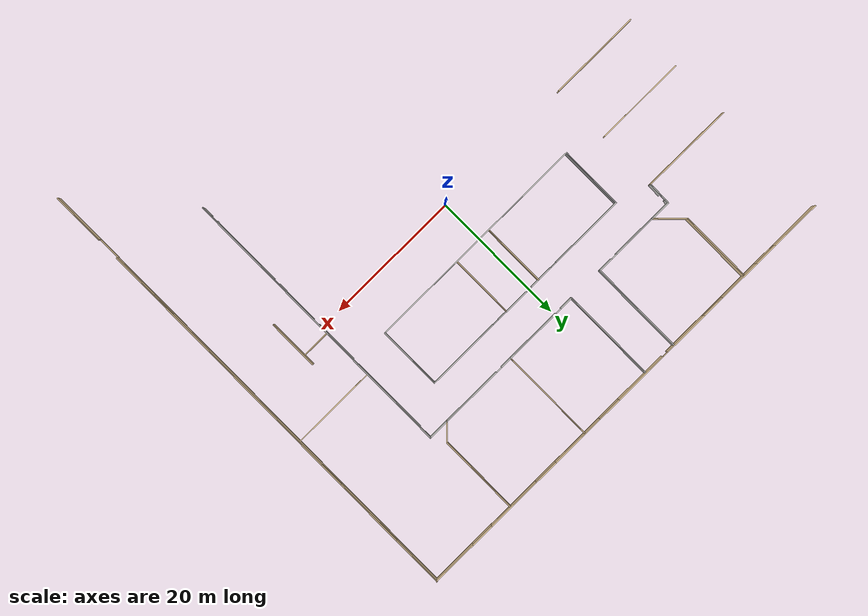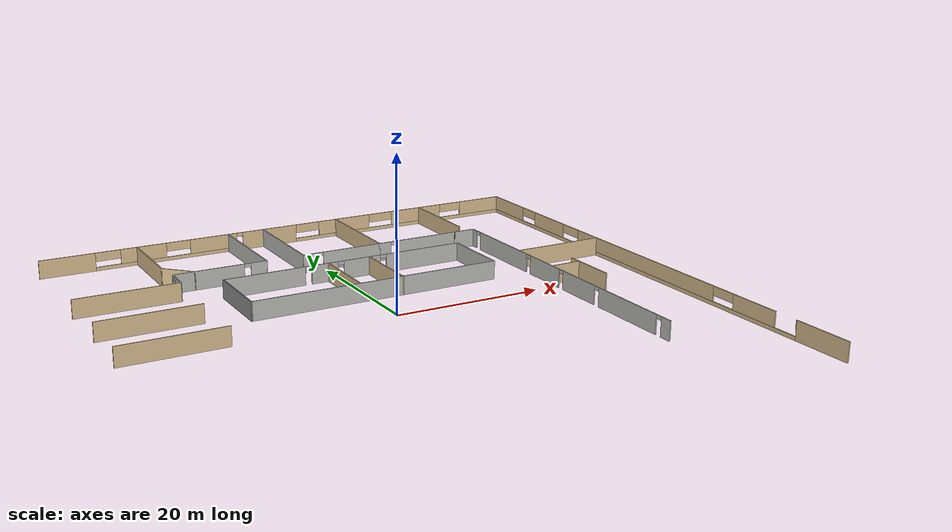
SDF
<sdf version="1.6">
 <model name="Building">
  <pose>0.649204 -3.2026 0 0 -0 0</pose>
  <link name="Wall_103">
   <collision name="Wall_103_Collision">
    <geometry><box><size>4.25 0.15 2.5</size></box></geometry>
    <pose>0 0 1.25 0 -0 0</pose>
   </collision>
   <visual name="Wall_103_Visual">
    <pose>0 0 1.25 0 -0 0</pose>
    <geometry><box><size>4.25 0.15 2.5</size></box></geometry>
    <material>
     <script><uri>file://media/materials/scripts/gazebo.material</uri><name>Gazebo/Grey</name></script>
     <ambient>0.921569 0.807843 0.615686 1</ambient>
    </material>
    <meta><layer>0</layer></meta>
   </visual>
   <pose>24.6252 4.22124 0 0 -0 0</pose>
  </link>
  <link name="Wall_107">
   <collision name="Wall_107_Collision">
    <geometry><box><size>7.5 0.15 2.5</size></box></geometry>
    <pose>0 0 1.25 0 -0 0</pose>
   </collision>
   <visual name="Wall_107_Visual">
    <pose>0 0 1.25 0 -0 0</pose>
    <geometry><box><size>7.5 0.15 2.5</size></box></geometry>
    <material>
     <script><uri>file://media/materials/scripts/gazebo.material</uri><name>Gazebo/Grey</name></script>
     <ambient>0.921569 0.807843 0.615686 1</ambient>
    </material>
    <meta><layer>0</layer></meta>
   </visual>
   <pose>26.8012 2.14732 0 0 0 -1.5708</pose>
  </link>
  <link name="Wall_15">
   <pose>35.2955 2.175 0 0 -0 1.5708</pose>
   <visual name="Wall_15_Visual_0">
    <pose>-31.881 0 1.25 0 -0 0</pose>
    <geometry><box><size>7.73799 0.15 2.5</size></box></geometry>
    <material>
     <script><uri>file://media/materials/scripts/gazebo.material</uri><name>Gazebo/Grey</name></script>
     <ambient>0.921569 0.807843 0.615686 1</ambient>
    </material>
    <meta><layer>0</layer></meta>
   </visual>
   <collision name="Wall_15_Collision_0">
    <geometry><box><size>7.73799 0.15 2.5</size></box></geometry>
    <pose>-31.881 0 1.25 0 -0 0</pose>
   </collision>
   <visual name="Wall_15_Visual_1">
    <pose>3.869 0 0.25 0 -0 0</pose>
    <geometry><box><size>63.762 0.15 0.5</size></box></geometry>
    <material>
     <script><uri>file://media/materials/scripts/gazebo.material</uri><name>Gazebo/Grey</name></script>
     <ambient>0.921569 0.807843 0.615686 1</ambient>
    </material>
    <meta><layer>0</layer></meta>
   </visual>
   <collision name="Wall_15_Collision_1">
    <geometry><box><size>63.762 0.15 0.5</size></box></geometry>
    <pose>3.869 0 0.25 0 -0 0</pose>
   </collision>
   <visual name="Wall_15_Visual_2">
    <pose>-21.1676 0 1.5 0 -0 0</pose>
    <geometry><box><size>6.97218 0.15 2</size></box></geometry>
    <material>
     <script><uri>file://media/materials/scripts/gazebo.material</uri><name>Gazebo/Grey</name></script>
     <ambient>0.921569 0.807843 0.615686 1</ambient>
    </material>
    <meta><layer>0</layer></meta>
   </visual>
   <collision name="Wall_15_Collision_2">
    <geometry><box><size>6.97218 0.15 2</size></box></geometry>
    <pose>-21.1676 0 1.5 0 -0 0</pose>
   </collision>
   <visual name="Wall_15_Visual_3">
    <pose>-0.106032 0 1.5 0 -0 0</pose>
    <geometry><box><size>28.1209 0.15 2</size></box></geometry>
    <material>
     <script><uri>file://media/materials/scripts/gazebo.material</uri><name>Gazebo/Grey</name></script>
     <ambient>0.921569 0.807843 0.615686 1</ambient>
    </material>
    <meta><layer>0</layer></meta>
   </visual>
   <collision name="Wall_15_Collision_3">
    <geometry><box><size>28.1209 0.15 2</size></box></geometry>
    <pose>-0.106032 0 1.5 0 -0 0</pose>
   </collision>
   <visual name="Wall_15_Visual_4">
    <pose>21.1713 0 1.5 0 -0 0</pose>
    <geometry><box><size>7.19064 0.15 2</size></box></geometry>
    <material>
     <script><uri>file://media/materials/scripts/gazebo.material</uri><name>Gazebo/Grey</name></script>
     <ambient>0.921569 0.807843 0.615686 1</ambient>
    </material>
    <meta><layer>0</layer></meta>
   </visual>
   <collision name="Wall_15_Collision_4">
    <geometry><box><size>7.19064 0.15 2</size></box></geometry>
    <pose>21.1713 0 1.5 0 -0 0</pose>
   </collision>
   <visual name="Wall_15_Visual_5">
    <pose>31.8827 0 1.5 0 -0 0</pose>
    <geometry><box><size>7.73457 0.15 2</size></box></geometry>
    <material>
     <script><uri>file://media/materials/scripts/gazebo.material</uri><name>Gazebo/Grey</name></script>
     <ambient>0.921569 0.807843 0.615686 1</ambient>
    </material>
    <meta><layer>0</layer></meta>
   </visual>
   <collision name="Wall_15_Collision_5">
    <geometry><box><size>7.73457 0.15 2</size></box></geometry>
    <pose>31.8827 0 1.5 0 -0 0</pose>
   </collision>
   <visual name="Wall_15_Visual_6">
    <pose>-27.9687 0 1.9 0 -0 0</pose>
    <geometry><box><size>0.086667 0.15 1.2</size></box></geometry>
    <material>
     <script><uri>file://media/materials/scripts/gazebo.material</uri><name>Gazebo/Grey</name></script>
     <ambient>0.921569 0.807843 0.615686 1</ambient>
    </material>
    <meta><layer>0</layer></meta>
   </visual>
   <collision name="Wall_15_Collision_6">
    <geometry><box><size>0.086667 0.15 1.2</size></box></geometry>
    <pose>-27.9687 0 1.9 0 -0 0</pose>
   </collision>
   <visual name="Wall_15_Visual_7">
    <pose>-15.924 0 1.9 0 -0 0</pose>
    <geometry><box><size>3.51504 0.15 1.2</size></box></geometry>
    <material>
     <script><uri>file://media/materials/scripts/gazebo.material</uri><name>Gazebo/Grey</name></script>
     <ambient>0.921569 0.807843 0.615686 1</ambient>
    </material>
    <meta><layer>0</layer></meta>
   </visual>
   <collision name="Wall_15_Collision_7">
    <geometry><box><size>3.51504 0.15 1.2</size></box></geometry>
    <pose>-15.924 0 1.9 0 -0 0</pose>
   </collision>
   <visual name="Wall_15_Visual_8">
    <pose>15.7652 0 1.9 0 -0 0</pose>
    <geometry><box><size>3.62151 0.15 1.2</size></box></geometry>
    <material>
     <script><uri>file://media/materials/scripts/gazebo.material</uri><name>Gazebo/Grey</name></script>
     <ambient>0.921569 0.807843 0.615686 1</ambient>
    </material>
    <meta><layer>0</layer></meta>
   </visual>
   <collision name="Wall_15_Collision_8">
    <geometry><box><size>3.62151 0.15 1.2</size></box></geometry>
    <pose>15.7652 0 1.9 0 -0 0</pose>
   </collision>
   <visual name="Wall_15_Visual_9">
    <pose>26.391 0 1.9 0 -0 0</pose>
    <geometry><box><size>3.24886 0.15 1.2</size></box></geometry>
    <material>
     <script><uri>file://media/materials/scripts/gazebo.material</uri><name>Gazebo/Grey</name></script>
     <ambient>0.921569 0.807843 0.615686 1</ambient>
    </material>
    <meta><layer>0</layer></meta>
   </visual>
   <collision name="Wall_15_Collision_9">
    <geometry><box><size>3.24886 0.15 1.2</size></box></geometry>
    <pose>26.391 0 1.9 0 -0 0</pose>
   </collision>
  </link>
  <link name="Wall_19">
   <pose>0.058011 37.7805 0 0 -0 0</pose>
   <visual name="Wall_19_Visual_0">
    <pose>-31.6032 0 1.25 0 -0 0</pose>
    <geometry><box><size>7.48557 0.15 2.5</size></box></geometry>
    <material>
     <script><uri>file://media/materials/scripts/gazebo.material</uri><name>Gazebo/Grey</name></script>
     <ambient>0.921569 0.807843 0.615686 1</ambient>
    </material>
    <meta><layer>0</layer></meta>
   </visual>
   <collision name="Wall_19_Collision_0">
    <geometry><box><size>7.48557 0.15 2.5</size></box></geometry>
    <pose>-31.6032 0 1.25 0 -0 0</pose>
   </collision>
   <visual name="Wall_19_Visual_1">
    <pose>-2.88179 0 1.25 0 -0 0</pose>
    <geometry><box><size>8.13835 0.15 2.5</size></box></geometry>
    <material>
     <script><uri>file://media/materials/scripts/gazebo.material</uri><name>Gazebo/Grey</name></script>
     <ambient>0.921569 0.807843 0.615686 1</ambient>
    </material>
    <meta><layer>0</layer></meta>
   </visual>
   <collision name="Wall_19_Collision_1">
    <geometry><box><size>8.13835 0.15 2.5</size></box></geometry>
    <pose>-2.88179 0 1.25 0 -0 0</pose>
   </collision>
   <visual name="Wall_19_Visual_2">
    <pose>-17.8557 0 0.25 0 -0 0</pose>
    <geometry><box><size>20.0095 0.15 0.5</size></box></geometry>
    <material>
     <script><uri>file://media/materials/scripts/gazebo.material</uri><name>Gazebo/Grey</name></script>
     <ambient>0.921569 0.807843 0.615686 1</ambient>
    </material>
    <meta><layer>0</layer></meta>
   </visual>
   <collision name="Wall_19_Collision_2">
    <geometry><box><size>20.0095 0.15 0.5</size></box></geometry>
    <pose>-17.8557 0 0.25 0 -0 0</pose>
   </collision>
   <visual name="Wall_19_Visual_3">
    <pose>18.2667 0 0.25 0 -0 0</pose>
    <geometry><box><size>34.1586 0.15 0.5</size></box></geometry>
    <material>
     <script><uri>file://media/materials/scripts/gazebo.material</uri><name>Gazebo/Grey</name></script>
     <ambient>0.921569 0.807843 0.615686 1</ambient>
    </material>
    <meta><layer>0</layer></meta>
   </visual>
   <collision name="Wall_19_Collision_3">
    <geometry><box><size>34.1586 0.15 0.5</size></box></geometry>
    <pose>18.2667 0 0.25 0 -0 0</pose>
   </collision>
   <visual name="Wall_19_Visual_4">
    <pose>-21.2381 0 1.5 0 -0 0</pose>
    <geometry><box><size>6.36726 0.15 2</size></box></geometry>
    <material>
     <script><uri>file://media/materials/scripts/gazebo.material</uri><name>Gazebo/Grey</name></script>
     <ambient>0.921569 0.807843 0.615686 1</ambient>
    </material>
    <meta><layer>0</layer></meta>
   </visual>
   <collision name="Wall_19_Collision_4">
    <geometry><box><size>6.36726 0.15 2</size></box></geometry>
    <pose>-21.2381 0 1.5 0 -0 0</pose>
   </collision>
   <visual name="Wall_19_Visual_5">
    <pose>-11.2566 0 1.5 0 -0 0</pose>
    <geometry><box><size>6.81117 0.15 2</size></box></geometry>
    <material>
     <script><uri>file://media/materials/scripts/gazebo.material</uri><name>Gazebo/Grey</name></script>
     <ambient>0.921569 0.807843 0.615686 1</ambient>
    </material>
    <meta><layer>0</layer></meta>
   </visual>
   <collision name="Wall_19_Collision_5">
    <geometry><box><size>6.81117 0.15 2</size></box></geometry>
    <pose>-11.2566 0 1.5 0 -0 0</pose>
   </collision>
   <visual name="Wall_19_Visual_6">
    <pose>-11.2566 0 1.5 0 -0 0</pose>
    <geometry><box><size>6.81117 0.15 2</size></box></geometry>
    <material>
     <script><uri>file://media/materials/scripts/gazebo.material</uri><name>Gazebo/Grey</name></script>
     <ambient>0.921569 0.807843 0.615686 1</ambient>
    </material>
    <meta><layer>0</layer></meta>
   </visual>
   <collision name="Wall_19_Collision_6">
    <geometry><box><size>6.81117 0.15 2</size></box></geometry>
    <pose>-11.2566 0 1.5 0 -0 0</pose>
   </collision>
   <visual name="Wall_19_Visual_7">
    <pose>8.90248 0 1.5 0 -0 0</pose>
    <geometry><box><size>8.18717 0.15 2</size></box></geometry>
    <material>
     <script><uri>file://media/materials/scripts/gazebo.material</uri><name>Gazebo/Grey</name></script>
     <ambient>0.921569 0.807843 0.615686 1</ambient>
    </material>
    <meta><layer>0</layer></meta>
   </visual>
   <collision name="Wall_19_Collision_7">
    <geometry><box><size>8.18717 0.15 2</size></box></geometry>
    <pose>8.90248 0 1.5 0 -0 0</pose>
   </collision>
   <visual name="Wall_19_Visual_8">
    <pose>20.8176 0 1.5 0 -0 0</pose>
    <geometry><box><size>8.2936 0.15 2</size></box></geometry>
    <material>
     <script><uri>file://media/materials/scripts/gazebo.material</uri><name>Gazebo/Grey</name></script>
     <ambient>0.921569 0.807843 0.615686 1</ambient>
    </material>
    <meta><layer>0</layer></meta>
   </visual>
   <collision name="Wall_19_Collision_8">
    <geometry><box><size>8.2936 0.15 2</size></box></geometry>
    <pose>20.8176 0 1.5 0 -0 0</pose>
   </collision>
   <visual name="Wall_19_Visual_9">
    <pose>31.9127 0 1.5 0 -0 0</pose>
    <geometry><box><size>6.86653 0.15 2</size></box></geometry>
    <material>
     <script><uri>file://media/materials/scripts/gazebo.material</uri><name>Gazebo/Grey</name></script>
     <ambient>0.921569 0.807843 0.615686 1</ambient>
    </material>
    <meta><layer>0</layer></meta>
   </visual>
   <collision name="Wall_19_Collision_9">
    <geometry><box><size>6.86653 0.15 2</size></box></geometry>
    <pose>31.9127 0 1.5 0 -0 0</pose>
   </collision>
   <visual name="Wall_19_Visual_10">
    <pose>-26.1411 0 1.9 0 -0 0</pose>
    <geometry><box><size>3.43866 0.15 1.2</size></box></geometry>
    <material>
     <script><uri>file://media/materials/scripts/gazebo.material</uri><name>Gazebo/Grey</name></script>
     <ambient>0.921569 0.807843 0.615686 1</ambient>
    </material>
    <meta><layer>0</layer></meta>
   </visual>
   <collision name="Wall_19_Collision_10">
    <geometry><box><size>3.43866 0.15 1.2</size></box></geometry>
    <pose>-26.1411 0 1.9 0 -0 0</pose>
   </collision>
   <visual name="Wall_19_Visual_11">
    <pose>2.99814 0 1.9 0 -0 0</pose>
    <geometry><box><size>3.62151 0.15 1.2</size></box></geometry>
    <material>
     <script><uri>file://media/materials/scripts/gazebo.material</uri><name>Gazebo/Grey</name></script>
     <ambient>0.921569 0.807843 0.615686 1</ambient>
    </material>
    <meta><layer>0</layer></meta>
   </visual>
   <collision name="Wall_19_Collision_11">
    <geometry><box><size>3.62151 0.15 1.2</size></box></geometry>
    <pose>2.99814 0 1.9 0 -0 0</pose>
   </collision>
   <visual name="Wall_19_Visual_12">
    <pose>-16.3583 0 1.9 0 -0 0</pose>
    <geometry><box><size>3.39237 0.15 1.2</size></box></geometry>
    <material>
     <script><uri>file://media/materials/scripts/gazebo.material</uri><name>Gazebo/Grey</name></script>
     <ambient>0.921569 0.807843 0.615686 1</ambient>
    </material>
    <meta><layer>0</layer></meta>
   </visual>
   <collision name="Wall_19_Collision_12">
    <geometry><box><size>3.39237 0.15 1.2</size></box></geometry>
    <pose>-16.3583 0 1.9 0 -0 0</pose>
   </collision>
   <visual name="Wall_19_Visual_13">
    <pose>14.8334 0 1.9 0 -0 0</pose>
    <geometry><box><size>3.67475 0.15 1.2</size></box></geometry>
    <material>
     <script><uri>file://media/materials/scripts/gazebo.material</uri><name>Gazebo/Grey</name></script>
     <ambient>0.921569 0.807843 0.615686 1</ambient>
    </material>
    <meta><layer>0</layer></meta>
   </visual>
   <collision name="Wall_19_Collision_13">
    <geometry><box><size>3.67475 0.15 1.2</size></box></geometry>
    <pose>14.8334 0 1.9 0 -0 0</pose>
   </collision>
   <visual name="Wall_19_Visual_14">
    <pose>26.7219 0 1.9 0 -0 0</pose>
    <geometry><box><size>3.51504 0.15 1.2</size></box></geometry>
    <material>
     <script><uri>file://media/materials/scripts/gazebo.material</uri><name>Gazebo/Grey</name></script>
     <ambient>0.921569 0.807843 0.615686 1</ambient>
    </material>
    <meta><layer>0</layer></meta>
   </visual>
   <collision name="Wall_19_Collision_14">
    <geometry><box><size>3.51504 0.15 1.2</size></box></geometry>
    <pose>26.7219 0 1.9 0 -0 0</pose>
   </collision>
   <visual name="Wall_19_Visual_15">
    <pose>-7.40097 0 2.25 0 -0 0</pose>
    <geometry><box><size>0.9 0.15 0.5</size></box></geometry>
    <material>
     <script><uri>file://media/materials/scripts/gazebo.material</uri><name>Gazebo/Grey</name></script>
     <ambient>0.921569 0.807843 0.615686 1</ambient>
    </material>
    <meta><layer>0</layer></meta>
   </visual>
   <collision name="Wall_19_Collision_15">
    <geometry><box><size>0.9 0.15 0.5</size></box></geometry>
    <pose>-7.40097 0 2.25 0 -0 0</pose>
   </collision>
   <visual name="Wall_19_Visual_16">
    <pose>-7.40097 0 2.25 0 -0 0</pose>
    <geometry><box><size>0.9 0.15 0.5</size></box></geometry>
    <material>
     <script><uri>file://media/materials/scripts/gazebo.material</uri><name>Gazebo/Grey</name></script>
     <ambient>0.921569 0.807843 0.615686 1</ambient>
    </material>
    <meta><layer>0</layer></meta>
   </visual>
   <collision name="Wall_19_Collision_16">
    <geometry><box><size>0.9 0.15 0.5</size></box></geometry>
    <pose>-7.40097 0 2.25 0 -0 0</pose>
   </collision>
  </link>
  <link name="Wall_21">
   <collision name="Wall_21_Collision">
    <geometry><box><size>10.75 0.15 2.5</size></box></geometry>
    <pose>0 0 1.25 0 -0 0</pose>
   </collision>
   <visual name="Wall_21_Visual">
    <pose>0 0 1.25 0 -0 0</pose>
    <geometry><box><size>10.75 0.15 2.5</size></box></geometry>
    <material>
     <script><uri>file://media/materials/scripts/gazebo.material</uri><name>Gazebo/Grey</name></script>
     <ambient>0.921569 0.807843 0.615686 1</ambient>
    </material>
    <meta><layer>0</layer></meta>
   </visual>
   <pose>-22.0834 32.3763 0 0 0 -1.5708</pose>
  </link>
  <link name="Wall_22">
   <collision name="Wall_22_Collision">
    <geometry><box><size>4.75 0.15 2.5</size></box></geometry>
    <pose>0 0 1.25 0 -0 0</pose>
   </collision>
   <visual name="Wall_22_Visual">
    <pose>0 0 1.25 0 -0 0</pose>
    <geometry><box><size>4.75 0.15 2.5</size></box></geometry>
    <material>
     <script><uri>file://media/materials/scripts/gazebo.material</uri><name>Gazebo/Grey</name></script>
     <ambient>0.921569 0.807843 0.615686 1</ambient>
    </material>
    <meta><layer>0</layer></meta>
   </visual>
   <pose>-20.457 25.45 0 0 0 -0.785398</pose>
  </link>
  <link name="Wall_23">
   <pose>-13.9057 23.8237 0 0 -0 0</pose>
   <visual name="Wall_23_Visual_0">
    <pose>-1.59265 0 1.25 0 -0 0</pose>
    <geometry><box><size>6.8147 0.15 2.5</size></box></geometry>
    <material>
     <script><uri>file://media/materials/scripts/gazebo.material</uri><name>Gazebo/CeilingTiled</name></script>
     <ambient>1 1 1 1</ambient>
    </material>
    <meta><layer>0</layer></meta>
   </visual>
   <collision name="Wall_23_Collision_0">
    <geometry><box><size>6.8147 0.15 2.5</size></box></geometry>
    <pose>-1.59265 0 1.25 0 -0 0</pose>
   </collision>
   <visual name="Wall_23_Visual_1">
    <pose>3.85735 0 1.25 0 -0 0</pose>
    <geometry><box><size>2.2853 0.15 2.5</size></box></geometry>
    <material>
     <script><uri>file://media/materials/scripts/gazebo.material</uri><name>Gazebo/CeilingTiled</name></script>
     <ambient>1 1 1 1</ambient>
    </material>
    <meta><layer>0</layer></meta>
   </visual>
   <collision name="Wall_23_Collision_1">
    <geometry><box><size>2.2853 0.15 2.5</size></box></geometry>
    <pose>3.85735 0 1.25 0 -0 0</pose>
   </collision>
   <visual name="Wall_23_Visual_2">
    <pose>2.2647 0 2.25 0 -0 0</pose>
    <geometry><box><size>0.9 0.15 0.5</size></box></geometry>
    <material>
     <script><uri>file://media/materials/scripts/gazebo.material</uri><name>Gazebo/CeilingTiled</name></script>
     <ambient>1 1 1 1</ambient>
    </material>
    <meta><layer>0</layer></meta>
   </visual>
   <collision name="Wall_23_Collision_2">
    <geometry><box><size>0.9 0.15 0.5</size></box></geometry>
    <pose>2.2647 0 2.25 0 -0 0</pose>
   </collision>
  </link>
  <link name="Wall_24">
   <collision name="Wall_24_Collision">
    <geometry><box><size>14 0.15 2.5</size></box></geometry>
    <pose>0 0 1.25 0 -0 0</pose>
   </collision>
   <visual name="Wall_24_Visual">
    <pose>0 0 1.25 0 -0 0</pose>
    <geometry><box><size>14 0.15 2.5</size></box></geometry>
    <material>
     <script><uri>file://media/materials/scripts/gazebo.material</uri><name>Gazebo/CeilingTiled</name></script>
     <ambient>1 1 1 1</ambient>
    </material>
    <meta><layer>0</layer></meta>
   </visual>
   <pose>-8.9807 30.7487 0 0 -0 1.5708</pose>
  </link>
  <link name="Wall_26">
   <collision name="Wall_26_Collision">
    <geometry><box><size>14 0.15 2.5</size></box></geometry>
    <pose>0 0 1.25 0 -0 0</pose>
   </collision>
   <visual name="Wall_26_Visual">
    <pose>0 0 1.25 0 -0 0</pose>
    <geometry><box><size>14 0.15 2.5</size></box></geometry>
    <material>
     <script><uri>file://media/materials/scripts/gazebo.material</uri><name>Gazebo/CeilingTiled</name></script>
     <ambient>1 1 1 1</ambient>
    </material>
    <meta><layer>0</layer></meta>
   </visual>
   <pose>-3.76339 30.6713 0 0 0 -1.5708</pose>
  </link>
  <link name="Wall_27">
   <pose>1.91161 23.7463 0 0 -0 0</pose>
   <visual name="Wall_27_Visual_0">
    <pose>-4.71792 0 1.25 0 -0 0</pose>
    <geometry><box><size>2.06417 0.15 2.5</size></box></geometry>
    <material>
     <script><uri>file://media/materials/scripts/gazebo.material</uri><name>Gazebo/CeilingTiled</name></script>
     <ambient>1 1 1 1</ambient>
    </material>
    <meta><layer>0</layer></meta>
   </visual>
   <collision name="Wall_27_Collision_0">
    <geometry><box><size>2.06417 0.15 2.5</size></box></geometry>
    <pose>-4.71792 0 1.25 0 -0 0</pose>
   </collision>
   <visual name="Wall_27_Visual_1">
    <pose>1.48208 0 1.25 0 -0 0</pose>
    <geometry><box><size>8.53583 0.15 2.5</size></box></geometry>
    <material>
     <script><uri>file://media/materials/scripts/gazebo.material</uri><name>Gazebo/CeilingTiled</name></script>
     <ambient>1 1 1 1</ambient>
    </material>
    <meta><layer>0</layer></meta>
   </visual>
   <collision name="Wall_27_Collision_1">
    <geometry><box><size>8.53583 0.15 2.5</size></box></geometry>
    <pose>1.48208 0 1.25 0 -0 0</pose>
   </collision>
   <visual name="Wall_27_Visual_2">
    <pose>-3.23583 0 2.25 0 -0 0</pose>
    <geometry><box><size>0.9 0.15 0.5</size></box></geometry>
    <material>
     <script><uri>file://media/materials/scripts/gazebo.material</uri><name>Gazebo/CeilingTiled</name></script>
     <ambient>1 1 1 1</ambient>
    </material>
    <meta><layer>0</layer></meta>
   </visual>
   <collision name="Wall_27_Collision_2">
    <geometry><box><size>0.9 0.15 0.5</size></box></geometry>
    <pose>-3.23583 0 2.25 0 -0 0</pose>
   </collision>
  </link>
  <link name="Wall_28">
   <collision name="Wall_28_Collision">
    <geometry><box><size>14 0.15 2.5</size></box></geometry>
    <pose>0 0 1.25 0 -0 0</pose>
   </collision>
   <visual name="Wall_28_Visual">
    <pose>0 0 1.25 0 -0 0</pose>
    <geometry><box><size>14 0.15 2.5</size></box></geometry>
    <material>
     <script><uri>file://media/materials/scripts/gazebo.material</uri><name>Gazebo/Grey</name></script>
     <ambient>0.921569 0.807843 0.615686 1</ambient>
    </material>
    <meta><layer>0</layer></meta>
   </visual>
   <pose>7.58661 30.6713 0 0 -0 1.5708</pose>
  </link>
  <link name="Wall_30">
   <pose>13.5116 23.7463 0 0 -0 0</pose>
   <visual name="Wall_30_Visual_0">
    <pose>-5.09853 0 1.25 0 -0 0</pose>
    <geometry><box><size>1.80295 0.15 2.5</size></box></geometry>
    <material>
     <script><uri>file://media/materials/scripts/gazebo.material</uri><name>Gazebo/CeilingTiled</name></script>
     <ambient>1 1 1 1</ambient>
    </material>
    <meta><layer>0</layer></meta>
   </visual>
   <collision name="Wall_30_Collision_0">
    <geometry><box><size>1.80295 0.15 2.5</size></box></geometry>
    <pose>-5.09853 0 1.25 0 -0 0</pose>
   </collision>
   <visual name="Wall_30_Visual_1">
    <pose>1.35147 0 1.25 0 -0 0</pose>
    <geometry><box><size>9.29705 0.15 2.5</size></box></geometry>
    <material>
     <script><uri>file://media/materials/scripts/gazebo.material</uri><name>Gazebo/CeilingTiled</name></script>
     <ambient>1 1 1 1</ambient>
    </material>
    <meta><layer>0</layer></meta>
   </visual>
   <collision name="Wall_30_Collision_1">
    <geometry><box><size>9.29705 0.15 2.5</size></box></geometry>
    <pose>1.35147 0 1.25 0 -0 0</pose>
   </collision>
   <visual name="Wall_30_Visual_2">
    <pose>-3.74705 0 2.25 0 -0 0</pose>
    <geometry><box><size>0.9 0.15 0.5</size></box></geometry>
    <material>
     <script><uri>file://media/materials/scripts/gazebo.material</uri><name>Gazebo/CeilingTiled</name></script>
     <ambient>1 1 1 1</ambient>
    </material>
    <meta><layer>0</layer></meta>
   </visual>
   <collision name="Wall_30_Collision_2">
    <geometry><box><size>0.9 0.15 0.5</size></box></geometry>
    <pose>-3.74705 0 2.25 0 -0 0</pose>
   </collision>
  </link>
  <link name="Wall_31">
   <collision name="Wall_31_Collision">
    <geometry><box><size>3 0.15 2.5</size></box></geometry>
    <pose>0 0 1.25 0 -0 0</pose>
   </collision>
   <visual name="Wall_31_Visual">
    <pose>0 0 1.25 0 -0 0</pose>
    <geometry><box><size>3 0.15 2.5</size></box></geometry>
    <material>
     <script><uri>file://media/materials/scripts/gazebo.material</uri><name>Gazebo/Grey</name></script>
     <ambient>0.921569 0.807843 0.615686 1</ambient>
    </material>
    <meta><layer>0</layer></meta>
   </visual>
   <pose>20.4442 24.754 0 0 -0 0.785398</pose>
  </link>
  <link name="Wall_32">
   <collision name="Wall_32_Collision">
    <geometry><box><size>12 0.15 2.5</size></box></geometry>
    <pose>0 0 1.25 0 -0 0</pose>
   </collision>
   <visual name="Wall_32_Visual">
    <pose>0 0 1.25 0 -0 0</pose>
    <geometry><box><size>12 0.15 2.5</size></box></geometry>
    <material>
     <script><uri>file://media/materials/scripts/gazebo.material</uri><name>Gazebo/Grey</name></script>
     <ambient>0.921569 0.807843 0.615686 1</ambient>
    </material>
    <meta><layer>0</layer></meta>
   </visual>
   <pose>21.4519 31.6866 0 0 -0 1.5708</pose>
  </link>
  <link name="Wall_37">
   <collision name="Wall_37_Collision">
    <geometry><box><size>3.25 0.15 2.5</size></box></geometry>
    <pose>0 0 1.25 0 -0 0</pose>
   </collision>
   <visual name="Wall_37_Visual">
    <pose>0 0 1.25 0 -0 0</pose>
    <geometry><box><size>3.25 0.15 2.5</size></box></geometry>
    <material>
     <script><uri>file://media/materials/scripts/gazebo.material</uri><name>Gazebo/CeilingTiled</name></script>
     <ambient>1 1 1 1</ambient>
    </material>
    <meta><layer>0</layer></meta>
   </visual>
   <pose>20.9866 23.7463 0 0 -0 0</pose>
  </link>
  <link name="Wall_38">
   <pose>22.5366 2.32134 0 0 0 -1.5708</pose>
   <visual name="Wall_38_Visual_0">
    <pose>-20.9301 0 1.25 0 -0 0</pose>
    <geometry><box><size>1.13983 0.15 2.5</size></box></geometry>
    <material>
     <script><uri>file://media/materials/scripts/gazebo.material</uri><name>Gazebo/CeilingTiled</name></script>
     <ambient>1 1 1 1</ambient>
    </material>
    <meta><layer>0</layer></meta>
   </visual>
   <collision name="Wall_38_Collision_0">
    <geometry><box><size>1.13983 0.15 2.5</size></box></geometry>
    <pose>-20.9301 0 1.25 0 -0 0</pose>
   </collision>
   <visual name="Wall_38_Visual_1">
    <pose>-13.5855 0 1.25 0 -0 0</pose>
    <geometry><box><size>11.7493 0.15 2.5</size></box></geometry>
    <material>
     <script><uri>file://media/materials/scripts/gazebo.material</uri><name>Gazebo/CeilingTiled</name></script>
     <ambient>1 1 1 1</ambient>
    </material>
    <meta><layer>0</layer></meta>
   </visual>
   <collision name="Wall_38_Collision_1">
    <geometry><box><size>11.7493 0.15 2.5</size></box></geometry>
    <pose>-13.5855 0 1.25 0 -0 0</pose>
   </collision>
   <visual name="Wall_38_Visual_2">
    <pose>-3.55683 0 1.25 0 -0 0</pose>
    <geometry><box><size>6.50816 0.15 2.5</size></box></geometry>
    <material>
     <script><uri>file://media/materials/scripts/gazebo.material</uri><name>Gazebo/CeilingTiled</name></script>
     <ambient>1 1 1 1</ambient>
    </material>
    <meta><layer>0</layer></meta>
   </visual>
   <collision name="Wall_38_Collision_2">
    <geometry><box><size>6.50816 0.15 2.5</size></box></geometry>
    <pose>-3.55683 0 1.25 0 -0 0</pose>
   </collision>
   <visual name="Wall_38_Visual_3">
    <pose>3.90501 0 1.25 0 -0 0</pose>
    <geometry><box><size>6.61553 0.15 2.5</size></box></geometry>
    <material>
     <script><uri>file://media/materials/scripts/gazebo.material</uri><name>Gazebo/CeilingTiled</name></script>
     <ambient>1 1 1 1</ambient>
    </material>
    <meta><layer>0</layer></meta>
   </visual>
   <collision name="Wall_38_Collision_3">
    <geometry><box><size>6.61553 0.15 2.5</size></box></geometry>
    <pose>3.90501 0 1.25 0 -0 0</pose>
   </collision>
   <visual name="Wall_38_Visual_4">
    <pose>13.5678 0 1.25 0 -0 0</pose>
    <geometry><box><size>10.9101 0.15 2.5</size></box></geometry>
    <material>
     <script><uri>file://media/materials/scripts/gazebo.material</uri><name>Gazebo/CeilingTiled</name></script>
     <ambient>1 1 1 1</ambient>
    </material>
    <meta><layer>0</layer></meta>
   </visual>
   <collision name="Wall_38_Collision_4">
    <geometry><box><size>10.9101 0.15 2.5</size></box></geometry>
    <pose>13.5678 0 1.25 0 -0 0</pose>
   </collision>
   <visual name="Wall_38_Visual_5">
    <pose>20.7114 0 1.25 0 -0 0</pose>
    <geometry><box><size>1.57711 0.15 2.5</size></box></geometry>
    <material>
     <script><uri>file://media/materials/scripts/gazebo.material</uri><name>Gazebo/CeilingTiled</name></script>
     <ambient>1 1 1 1</ambient>
    </material>
    <meta><layer>0</layer></meta>
   </visual>
   <collision name="Wall_38_Collision_5">
    <geometry><box><size>1.57711 0.15 2.5</size></box></geometry>
    <pose>20.7114 0 1.25 0 -0 0</pose>
   </collision>
   <visual name="Wall_38_Visual_6">
    <pose>-19.9102 0 2.25 0 -0 0</pose>
    <geometry><box><size>0.9 0.15 0.5</size></box></geometry>
    <material>
     <script><uri>file://media/materials/scripts/gazebo.material</uri><name>Gazebo/CeilingTiled</name></script>
     <ambient>1 1 1 1</ambient>
    </material>
    <meta><layer>0</layer></meta>
   </visual>
   <collision name="Wall_38_Collision_6">
    <geometry><box><size>0.9 0.15 0.5</size></box></geometry>
    <pose>-19.9102 0 2.25 0 -0 0</pose>
   </collision>
   <visual name="Wall_38_Visual_7">
    <pose>-7.26091 0 2.25 0 -0 0</pose>
    <geometry><box><size>0.9 0.15 0.5</size></box></geometry>
    <material>
     <script><uri>file://media/materials/scripts/gazebo.material</uri><name>Gazebo/CeilingTiled</name></script>
     <ambient>1 1 1 1</ambient>
    </material>
    <meta><layer>0</layer></meta>
   </visual>
   <collision name="Wall_38_Collision_7">
    <geometry><box><size>0.9 0.15 0.5</size></box></geometry>
    <pose>-7.26091 0 2.25 0 -0 0</pose>
   </collision>
   <visual name="Wall_38_Visual_8">
    <pose>0.14725 0 2.25 0 -0 0</pose>
    <geometry><box><size>0.9 0.15 0.5</size></box></geometry>
    <material>
     <script><uri>file://media/materials/scripts/gazebo.material</uri><name>Gazebo/CeilingTiled</name></script>
     <ambient>1 1 1 1</ambient>
    </material>
    <meta><layer>0</layer></meta>
   </visual>
   <collision name="Wall_38_Collision_8">
    <geometry><box><size>0.9 0.15 0.5</size></box></geometry>
    <pose>0.14725 0 2.25 0 -0 0</pose>
   </collision>
   <visual name="Wall_38_Visual_9">
    <pose>7.66278 0 2.25 0 -0 0</pose>
    <geometry><box><size>0.9 0.15 0.5</size></box></geometry>
    <material>
     <script><uri>file://media/materials/scripts/gazebo.material</uri><name>Gazebo/CeilingTiled</name></script>
     <ambient>1 1 1 1</ambient>
    </material>
    <meta><layer>0</layer></meta>
   </visual>
   <collision name="Wall_38_Collision_9">
    <geometry><box><size>0.9 0.15 0.5</size></box></geometry>
    <pose>7.66278 0 2.25 0 -0 0</pose>
   </collision>
   <visual name="Wall_38_Visual_10">
    <pose>19.4729 0 2.25 0 -0 0</pose>
    <geometry><box><size>0.9 0.15 0.5</size></box></geometry>
    <material>
     <script><uri>file://media/materials/scripts/gazebo.material</uri><name>Gazebo/CeilingTiled</name></script>
     <ambient>1 1 1 1</ambient>
    </material>
    <meta><layer>0</layer></meta>
   </visual>
   <collision name="Wall_38_Collision_10">
    <geometry><box><size>0.9 0.15 0.5</size></box></geometry>
    <pose>19.4729 0 2.25 0 -0 0</pose>
   </collision>
  </link>
  <link name="Wall_40">
   <collision name="Wall_40_Collision">
    <geometry><box><size>12.75 0.15 2.5</size></box></geometry>
    <pose>0 0 1.25 0 -0 0</pose>
   </collision>
   <visual name="Wall_40_Visual">
    <pose>0 0 1.25 0 -0 0</pose>
    <geometry><box><size>12.75 0.15 2.5</size></box></geometry>
    <material>
     <script><uri>file://media/materials/scripts/gazebo.material</uri><name>Gazebo/Grey</name></script>
     <ambient>0.921569 0.807843 0.615686 1</ambient>
    </material>
    <meta><layer>0</layer></meta>
   </visual>
   <pose>28.9119 11.9091 0 0 -0 0</pose>
  </link>
  <link name="Wall_50">
   <collision name="Wall_50_Collision">
    <geometry><box><size>13.6584 0.15 2.5</size></box></geometry>
    <pose>0 0 1.25 0 -0 0</pose>
   </collision>
   <visual name="Wall_50_Visual">
    <pose>0 0 1.25 0 -0 0</pose>
    <geometry><box><size>13.6584 0.15 2.5</size></box></geometry>
    <material>
     <script><uri>file://media/materials/scripts/gazebo.material</uri><name>Gazebo/Grey</name></script>
     <ambient>0.921569 0.807843 0.615686 1</ambient>
    </material>
    <meta><layer>0</layer></meta>
   </visual>
   <pose>-28.5321 20.4567 0 0 0 -0.004664</pose>
  </link>
  <link name="Wall_52">
   <collision name="Wall_52_Collision">
    <geometry><box><size>13.5 0.15 2.5</size></box></geometry>
    <pose>0 0 1.25 0 -0 0</pose>
   </collision>
   <visual name="Wall_52_Visual">
    <pose>0 0 1.25 0 -0 0</pose>
    <geometry><box><size>13.5 0.15 2.5</size></box></geometry>
    <material>
     <script><uri>file://media/materials/scripts/gazebo.material</uri><name>Gazebo/Grey</name></script>
     <ambient>0.921569 0.807843 0.615686 1</ambient>
    </material>
    <meta><layer>0</layer></meta>
   </visual>
   <pose>-28.5455 3.06639 0 0 -0 0</pose>
  </link>
  <link name="Wall_7">
   <collision name="Wall_7_Collision">
    <geometry><box><size>13.25 0.15 2.5</size></box></geometry>
    <pose>0 0 1.25 0 -0 0</pose>
   </collision>
   <visual name="Wall_7_Visual">
    <pose>0 0 1.25 0 -0 0</pose>
    <geometry><box><size>13.25 0.15 2.5</size></box></geometry>
    <material>
     <script><uri>file://media/materials/scripts/gazebo.material</uri><name>Gazebo/Grey</name></script>
     <ambient>0.921569 0.807843 0.615686 1</ambient>
    </material>
    <meta><layer>0</layer></meta>
   </visual>
   <pose>-28.5436 11.6262 0 0 -0 0</pose>
  </link>
  <link name="Wall_72">
   <pose>0.148448 18.9637 0 0 -0 0</pose>
   <visual name="Wall_72_Visual_0">
    <pose>-11.3876 0 1.25 0 -0 0</pose>
    <geometry><box><size>11.2248 0.15 2.5</size></box></geometry>
    <material>
     <script><uri>file://media/materials/scripts/gazebo.material</uri><name>Gazebo/CeilingTiled</name></script>
     <ambient>1 1 1 1</ambient>
    </material>
    <meta><layer>0</layer></meta>
   </visual>
   <collision name="Wall_72_Collision_0">
    <geometry><box><size>11.2248 0.15 2.5</size></box></geometry>
    <pose>-11.3876 0 1.25 0 -0 0</pose>
   </collision>
   <visual name="Wall_72_Visual_1">
    <pose>-3.01671 0 1.25 0 -0 0</pose>
    <geometry><box><size>3.7169 0.15 2.5</size></box></geometry>
    <material>
     <script><uri>file://media/materials/scripts/gazebo.material</uri><name>Gazebo/CeilingTiled</name></script>
     <ambient>1 1 1 1</ambient>
    </material>
    <meta><layer>0</layer></meta>
   </visual>
   <collision name="Wall_72_Collision_1">
    <geometry><box><size>3.7169 0.15 2.5</size></box></geometry>
    <pose>-3.01671 0 1.25 0 -0 0</pose>
   </collision>
   <visual name="Wall_72_Visual_2">
    <pose>2.38294 0 1.25 0 -0 0</pose>
    <geometry><box><size>5.2824 0.15 2.5</size></box></geometry>
    <material>
     <script><uri>file://media/materials/scripts/gazebo.material</uri><name>Gazebo/CeilingTiled</name></script>
     <ambient>1 1 1 1</ambient>
    </material>
    <meta><layer>0</layer></meta>
   </visual>
   <collision name="Wall_72_Collision_2">
    <geometry><box><size>5.2824 0.15 2.5</size></box></geometry>
    <pose>2.38294 0 1.25 0 -0 0</pose>
   </collision>
   <visual name="Wall_72_Visual_3">
    <pose>11.4621 0 1.25 0 -0 0</pose>
    <geometry><box><size>11.0759 0.15 2.5</size></box></geometry>
    <material>
     <script><uri>file://media/materials/scripts/gazebo.material</uri><name>Gazebo/CeilingTiled</name></script>
     <ambient>1 1 1 1</ambient>
    </material>
    <meta><layer>0</layer></meta>
   </visual>
   <collision name="Wall_72_Collision_3">
    <geometry><box><size>11.0759 0.15 2.5</size></box></geometry>
    <pose>11.4621 0 1.25 0 -0 0</pose>
   </collision>
   <visual name="Wall_72_Visual_4">
    <pose>-5.32516 0 2.25 0 -0 0</pose>
    <geometry><box><size>0.9 0.15 0.5</size></box></geometry>
    <material>
     <script><uri>file://media/materials/scripts/gazebo.material</uri><name>Gazebo/CeilingTiled</name></script>
     <ambient>1 1 1 1</ambient>
    </material>
    <meta><layer>0</layer></meta>
   </visual>
   <collision name="Wall_72_Collision_4">
    <geometry><box><size>0.9 0.15 0.5</size></box></geometry>
    <pose>-5.32516 0 2.25 0 -0 0</pose>
   </collision>
   <visual name="Wall_72_Visual_5">
    <pose>-0.708263 0 2.25 0 -0 0</pose>
    <geometry><box><size>0.9 0.15 0.5</size></box></geometry>
    <material>
     <script><uri>file://media/materials/scripts/gazebo.material</uri><name>Gazebo/CeilingTiled</name></script>
     <ambient>1 1 1 1</ambient>
    </material>
    <meta><layer>0</layer></meta>
   </visual>
   <collision name="Wall_72_Collision_5">
    <geometry><box><size>0.9 0.15 0.5</size></box></geometry>
    <pose>-0.708263 0 2.25 0 -0 0</pose>
   </collision>
   <visual name="Wall_72_Visual_6">
    <pose>5.47414 0 2.25 0 -0 0</pose>
    <geometry><box><size>0.9 0.15 0.5</size></box></geometry>
    <material>
     <script><uri>file://media/materials/scripts/gazebo.material</uri><name>Gazebo/CeilingTiled</name></script>
     <ambient>1 1 1 1</ambient>
    </material>
    <meta><layer>0</layer></meta>
   </visual>
   <collision name="Wall_72_Collision_6">
    <geometry><box><size>0.9 0.15 0.5</size></box></geometry>
    <pose>5.47414 0 2.25 0 -0 0</pose>
   </collision>
  </link>
  <link name="Wall_73">
   <collision name="Wall_73_Collision">
    <geometry><box><size>9.5 0.15 2.5</size></box></geometry>
    <pose>0 0 1.25 0 -0 0</pose>
   </collision>
   <visual name="Wall_73_Visual">
    <pose>0 0 1.25 0 -0 0</pose>
    <geometry><box><size>9.5 0.15 2.5</size></box></geometry>
    <material>
     <script><uri>file://media/materials/scripts/gazebo.material</uri><name>Gazebo/CeilingTiled</name></script>
     <ambient>1 1 1 1</ambient>
    </material>
    <meta><layer>0</layer></meta>
   </visual>
   <pose>17.0734 14.2887 0 0 0 -1.5708</pose>
  </link>
  <link name="Wall_74">
   <collision name="Wall_74_Collision">
    <geometry><box><size>34 0.15 2.5</size></box></geometry>
    <pose>0 0 1.25 0 -0 0</pose>
   </collision>
   <visual name="Wall_74_Visual">
    <pose>0 0 1.25 0 -0 0</pose>
    <geometry><box><size>34 0.15 2.5</size></box></geometry>
    <material>
     <script><uri>file://media/materials/scripts/gazebo.material</uri><name>Gazebo/CeilingTiled</name></script>
     <ambient>1 1 1 1</ambient>
    </material>
    <meta><layer>0</layer></meta>
   </visual>
   <pose>0.148448 9.61368 0 0 -0 3.14159</pose>
  </link>
  <link name="Wall_75">
   <collision name="Wall_75_Collision">
    <geometry><box><size>9.5 0.15 2.5</size></box></geometry>
    <pose>0 0 1.25 0 -0 0</pose>
   </collision>
   <visual name="Wall_75_Visual">
    <pose>0 0 1.25 0 -0 0</pose>
    <geometry><box><size>9.5 0.15 2.5</size></box></geometry>
    <material>
     <script><uri>file://media/materials/scripts/gazebo.material</uri><name>Gazebo/Grey</name></script>
     <ambient>1 1 1 1</ambient>
    </material>
    <meta><layer>0</layer></meta>
   </visual>
   <pose>-16.7766 14.2887 0 0 -0 1.5708</pose>
  </link>
  <link name="Wall_78">
   <collision name="Wall_78_Collision">
    <geometry><box><size>9.5 0.15 2.5</size></box></geometry>
    <pose>0 0 1.25 0 -0 0</pose>
   </collision>
   <visual name="Wall_78_Visual">
    <pose>0 0 1.25 0 -0 0</pose>
    <geometry><box><size>9.5 0.15 2.5</size></box></geometry>
    <material>
     <script><uri>file://media/materials/scripts/gazebo.material</uri><name>Gazebo/Grey</name></script>
     <ambient>0.921569 0.807843 0.615686 1</ambient>
    </material>
    <meta><layer>0</layer></meta>
   </visual>
   <pose>3.60601 14.2765 0 0 0 -1.5708</pose>
  </link>
  <link name="Wall_80">
   <collision name="Wall_80_Collision">
    <geometry><box><size>9.5 0.15 2.5</size></box></geometry>
    <pose>0 0 1.25 0 -0 0</pose>
   </collision>
   <visual name="Wall_80_Visual">
    <pose>0 0 1.25 0 -0 0</pose>
    <geometry><box><size>9.5 0.15 2.5</size></box></geometry>
    <material>
     <script><uri>file://media/materials/scripts/gazebo.material</uri><name>Gazebo/Grey</name></script>
     <ambient>0.921569 0.807843 0.615686 1</ambient>
    </material>
    <meta><layer>0</layer></meta>
   </visual>
   <pose>-2.33759 14.303 0 0 0 -1.5708</pose>
  </link>
  <link name="Wall_82">
   <collision name="Wall_82_Collision">
    <geometry><box><size>3 0.15 2.5</size></box></geometry>
    <pose>0 0 1.25 0 -0 0</pose>
   </collision>
   <visual name="Wall_82_Visual">
    <pose>0 0 1.25 0 -0 0</pose>
    <geometry><box><size>3 0.15 2.5</size></box></geometry>
    <material>
     <script><uri>file://media/materials/scripts/gazebo.material</uri><name>Gazebo/CeilingTiled</name></script>
     <ambient>1 1 1 1</ambient>
    </material>
    <meta><layer>0</layer></meta>
   </visual>
   <pose>-20.2557 23.8237 0 0 -0 3.14159</pose>
  </link>
  <link name="Wall_83">
   <pose>-21.7293 22.1244 0 0 0 -1.59942</pose>
   <visual name="Wall_83_Visual_0">
    <pose>-1.44711 0 1.25 0 -0 0</pose>
    <geometry><box><size>0.655603 0.15 2.5</size></box></geometry>
    <material>
     <script><uri>file://media/materials/scripts/gazebo.material</uri><name>Gazebo/CeilingTiled</name></script>
     <ambient>1 1 1 1</ambient>
    </material>
    <meta><layer>0</layer></meta>
   </visual>
   <collision name="Wall_83_Collision_0">
    <geometry><box><size>0.655603 0.15 2.5</size></box></geometry>
    <pose>-1.44711 0 1.25 0 -0 0</pose>
   </collision>
   <visual name="Wall_83_Visual_1">
    <pose>0.777802 0 1.25 0 -0 0</pose>
    <geometry><box><size>1.99421 0.15 2.5</size></box></geometry>
    <material>
     <script><uri>file://media/materials/scripts/gazebo.material</uri><name>Gazebo/CeilingTiled</name></script>
     <ambient>1 1 1 1</ambient>
    </material>
    <meta><layer>0</layer></meta>
   </visual>
   <collision name="Wall_83_Collision_1">
    <geometry><box><size>1.99421 0.15 2.5</size></box></geometry>
    <pose>0.777802 0 1.25 0 -0 0</pose>
   </collision>
   <visual name="Wall_83_Visual_2">
    <pose>-0.669303 0 2.25 0 -0 0</pose>
    <geometry><box><size>0.9 0.15 0.5</size></box></geometry>
    <material>
     <script><uri>file://media/materials/scripts/gazebo.material</uri><name>Gazebo/CeilingTiled</name></script>
     <ambient>1 1 1 1</ambient>
    </material>
    <meta><layer>0</layer></meta>
   </visual>
   <collision name="Wall_83_Collision_2">
    <geometry><box><size>0.9 0.15 0.5</size></box></geometry>
    <pose>-0.669303 0 2.25 0 -0 0</pose>
   </collision>
  </link>
  <static>1</static>
 </model>
</sdf>
